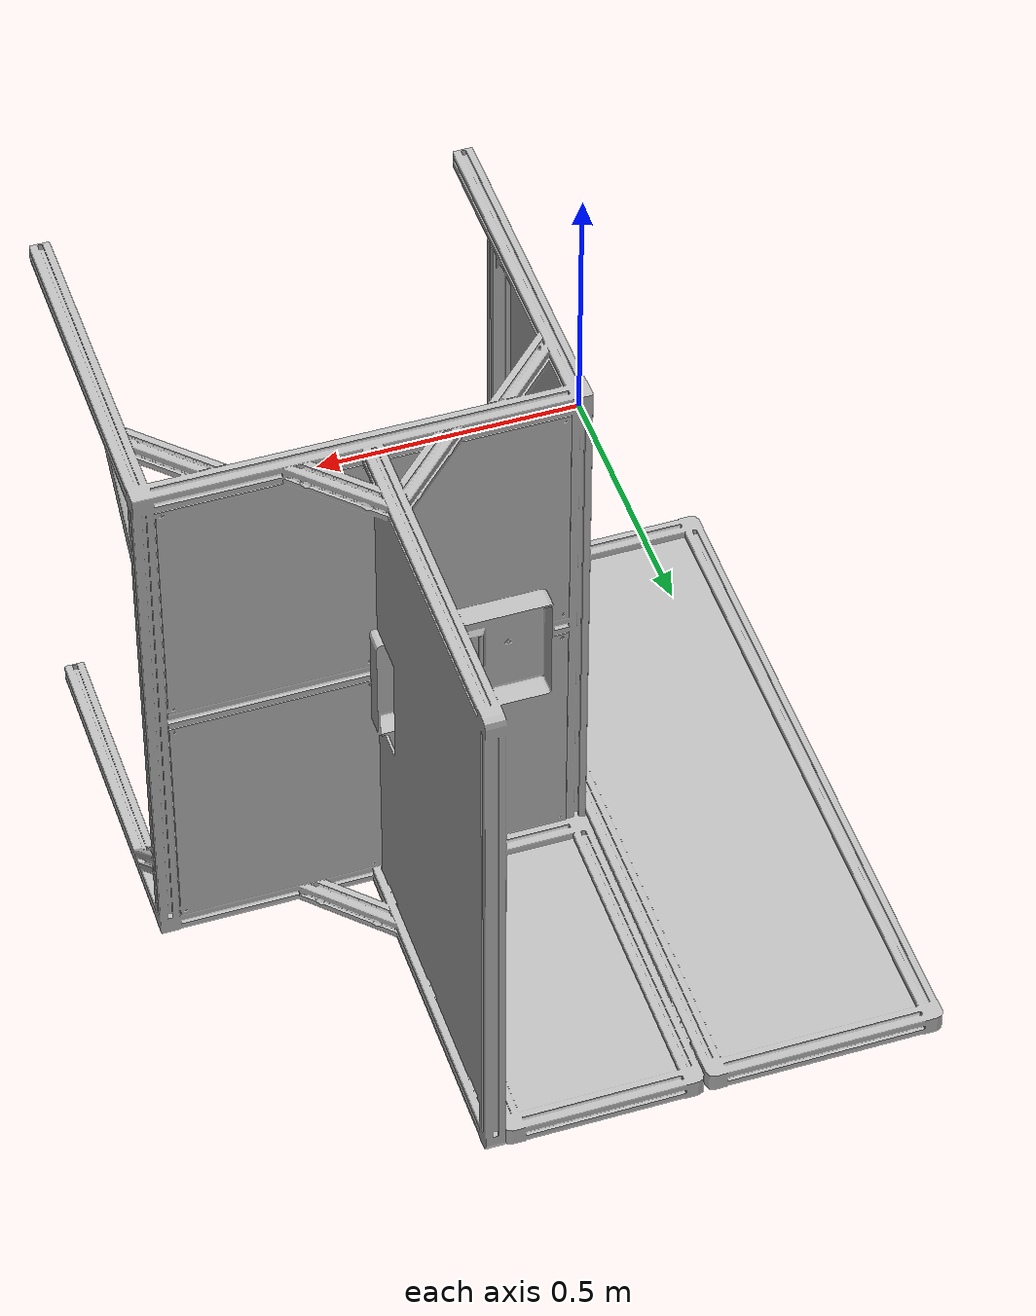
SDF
<?xml version='1.0'?>
<sdf version="1.7">
  <model name="BP_table">
    <link name="base_link">
        <inertial>
            <mass>100</mass> <!--kg, coming from CAD model properties the real wheight is 24.519749 kg-->
        </inertial>
      <collision name="collision">
        <geometry>
            <mesh>
                <uri> model://BP_table/meshes/BP_table.stl </uri>
                <scale>0.001 0.001 0.001</scale>
            </mesh>
        </geometry>
      </collision>
      <visual name="visual">
        <geometry>
            <mesh>
                <uri> model://BP_table/meshes/BP_table.stl </uri>
                <scale>0.001 0.001 0.001</scale>
            </mesh>
        </geometry>
      </visual>
    </link>
  </model>
</sdf>
